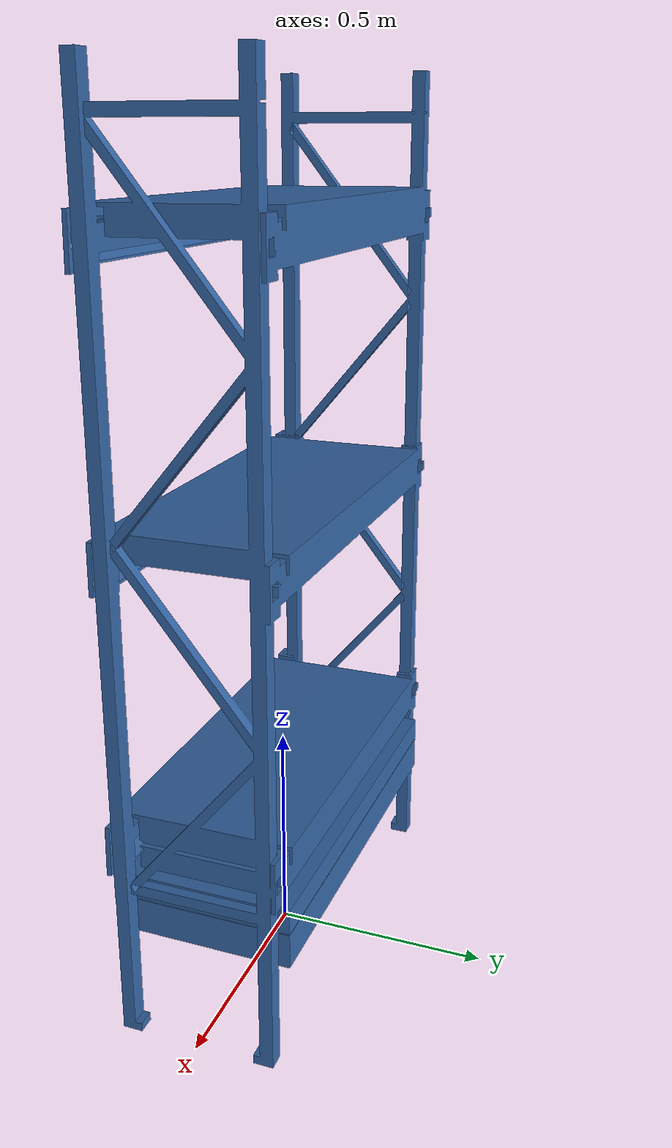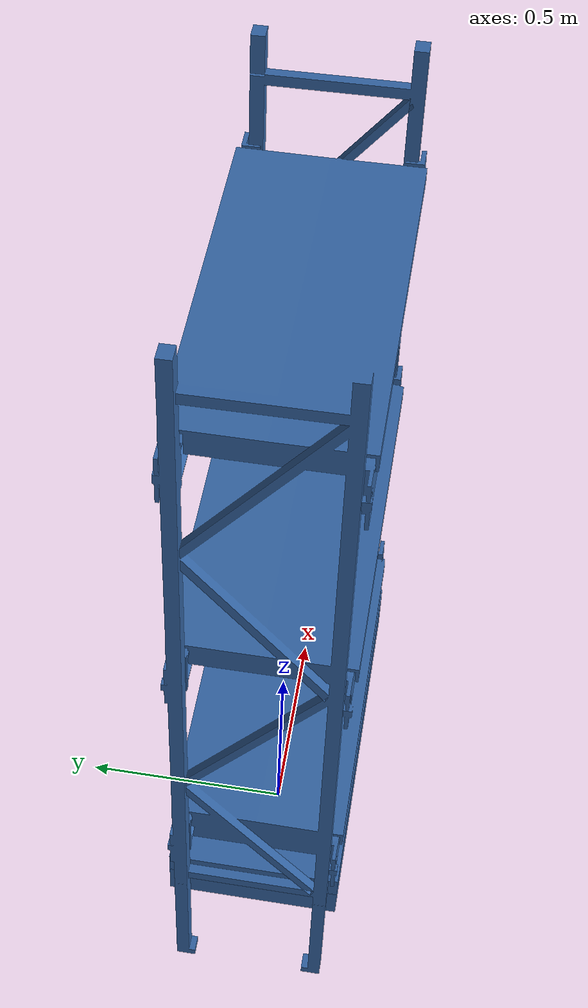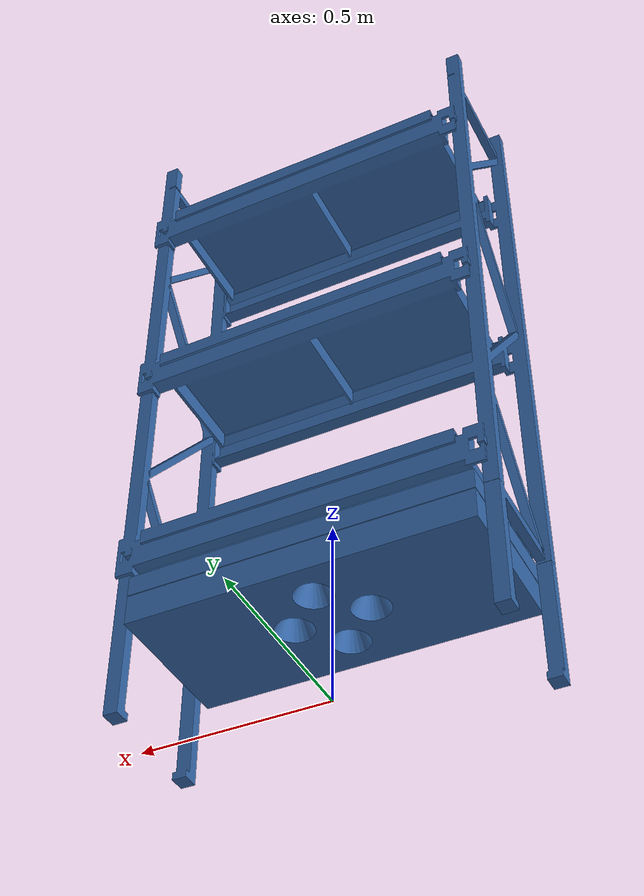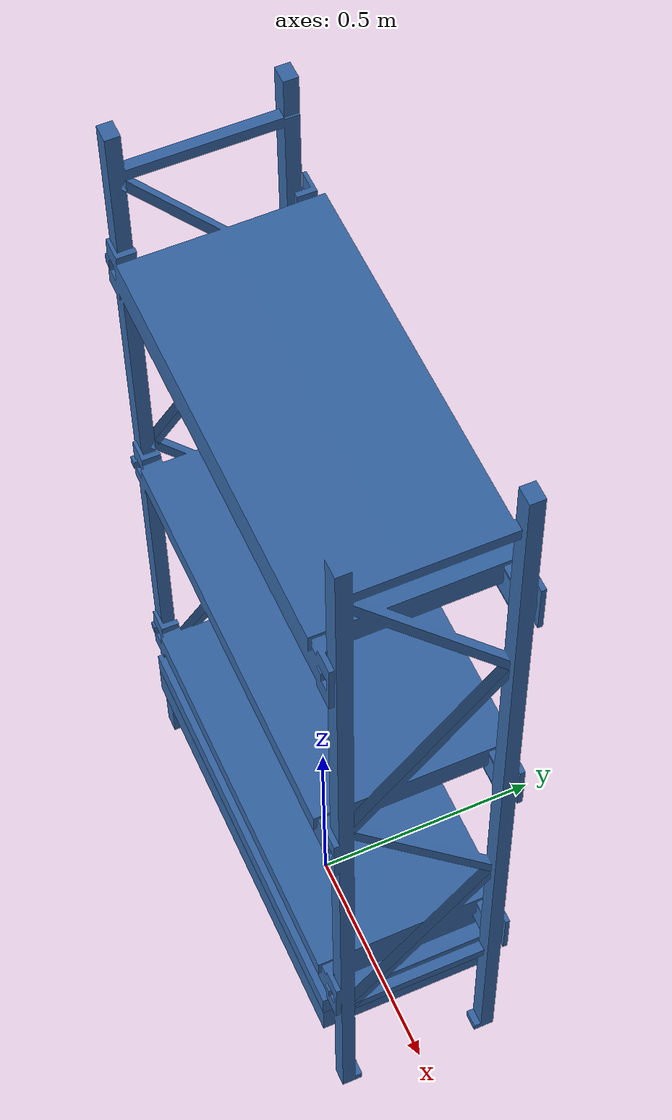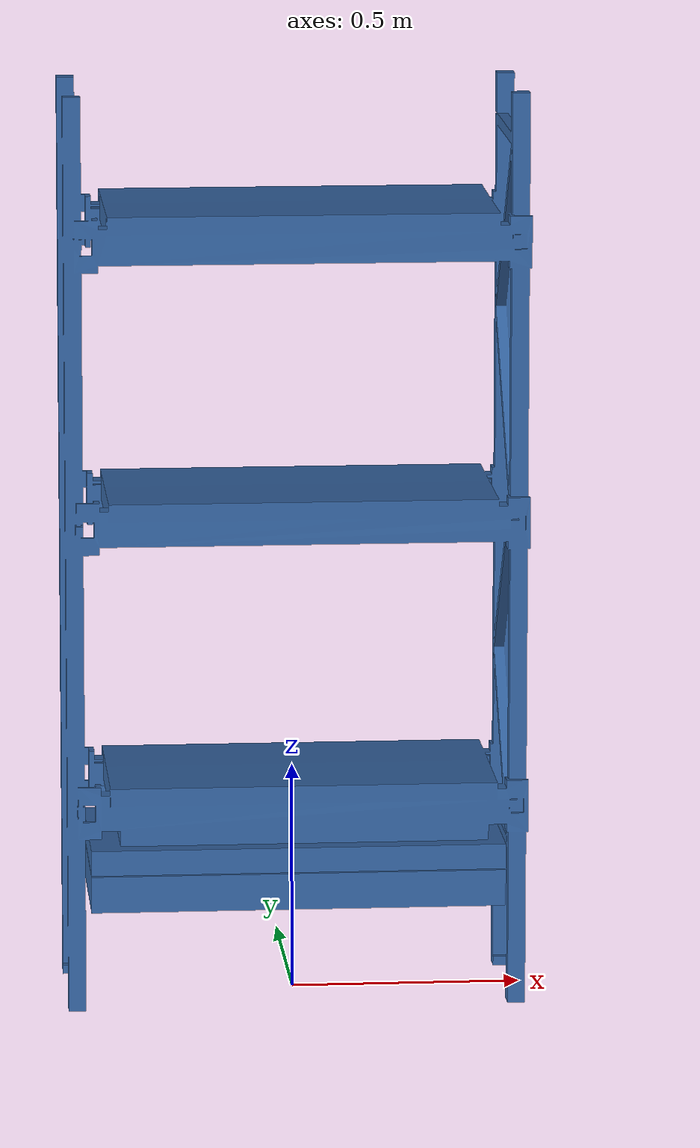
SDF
<?xml version='1.0'?>
<sdf version='1.7'>
  <model name='shelf'>
    <link name='shelf::link_0'>
      <inertial>
        <mass>0.01</mass>
        <inertia>
          <ixx>7.71e-05</ixx>
          <ixy>0</ixy>
          <ixz>0</ixz>
          <iyy>7.71e-05</iyy>
          <iyz>0</iyz>
          <izz>4.2e-06</izz>
        </inertia>
        <pose>0 0 0 0 -0 0</pose>
      </inertial>
      <pose>0 0 0 0 -0 0</pose>
      <gravity>1</gravity>
      <self_collide>0</self_collide>
      <kinematic>0</kinematic>
      <enable_wind>0</enable_wind>
      <visual name='visual'>
        <pose>0 0 0 0 -0 0</pose>
        <geometry>
          <mesh>
            <uri>model://shelf/meshes/shelf.dae</uri>
            <scale>1 1 1</scale>
          </mesh>
        </geometry>
        <transparency>0</transparency>
        <cast_shadows>1</cast_shadows>
        <material>
          <shader type='pixel'>
            <normal_map>__default__</normal_map>
          </shader>
          <script>
            <name>ModelPreview_6::link_0::visual_MATERIAL_</name>
            <uri>__default__</uri>
          </script>
          <ambient>0.204 0.396 0.643 1</ambient>
          <diffuse>0.204 0.396 0.643 1</diffuse>
          <specular>0 0 0 1</specular>
          <emissive>0 0 0 1</emissive>
        </material>
      </visual>
      <visual name='holes_visual'>
        <pose>0 0 0.225 0 -0 0</pose>
        <geometry>
          <mesh>
            <uri>model://shelf/meshes/holes.dae</uri>
            <scale>1 1 1</scale>
          </mesh>
        </geometry>
        <transparency>0</transparency>
        <cast_shadows>1</cast_shadows>
        <material>
          <shader type='pixel'>
            <normal_map>__default__</normal_map>
          </shader>
          <script>
            <name>ModelPreview_6::link_0::visual_MATERIAL_</name>
            <uri>__default__</uri>
          </script>
          <ambient>0.204 0.396 0.643 1</ambient>
          <diffuse>0.204 0.396 0.643 1</diffuse>
          <specular>0 0 0 1</specular>
          <emissive>0 0 0 1</emissive>
        </material>
      </visual>
      <visual name='ModelPreview_3::link_0::visual_1'>
        <pose>0 0 0.335 0 -0 0</pose>
        <geometry>
          <box>
            <size>0.9 0.4 0.055</size>
          </box>
        </geometry>
        <transparency>0</transparency>
        <cast_shadows>1</cast_shadows>
        <material>
          <shader type='pixel'>
            <normal_map>__default__</normal_map>
          </shader>
          <script>
            <name>ModelPreview_3::link_0::visual_1_MATERIAL_ModelPreview_6::link_0::visual_MATERIAL_</name>
            <uri>__default__</uri>
          </script>
          <ambient>0.204 0.396 0.643 1</ambient>
          <diffuse>0.204 0.396 0.643 1</diffuse>
          <specular>0 0 0 1</specular>
          <emissive>0 0 0 1</emissive>
        </material>
      </visual>
      <collision name='holes_collision'>
        <laser_retro>0</laser_retro>
        <max_contacts>10</max_contacts>
        <pose>0 0 0.225 0 -0 0</pose>
        <geometry>
          <mesh>
            <uri>/home/ssafy/S08P31A409/ssapang_ws/src/ssapang_map/models/shelf/meshes/holes.dae</uri>
            <scale>1 1 1</scale>
          </mesh>
        </geometry>
        <surface>
          <friction>
            <ode>
              <mu>1</mu>
              <mu2>1</mu2>
              <fdir1>0 0 0</fdir1>
              <slip1>0</slip1>
              <slip2>0</slip2>
            </ode>
            <torsional>
              <coefficient>1</coefficient>
              <patch_radius>1</patch_radius>
              <surface_radius>1</surface_radius>
              <use_patch_radius>1</use_patch_radius>
              <ode>
                <slip>0</slip>
              </ode>
            </torsional>
          </friction>
          <bounce>
            <restitution_coefficient>1</restitution_coefficient>
            <threshold>1e+06</threshold>
          </bounce>
          <contact>
            <collide_without_contact>0</collide_without_contact>
            <collide_without_contact_bitmask>1</collide_without_contact_bitmask>
            <collide_bitmask>1</collide_bitmask>
            <ode>
              <soft_cfm>0</soft_cfm>
              <soft_erp>0.2</soft_erp>
              <kp>1e+13</kp>
              <kd>1</kd>
              <max_vel>0.01</max_vel>
              <min_depth>0</min_depth>
            </ode>
            <bullet>
              <split_impulse>1</split_impulse>
              <split_impulse_penetration_threshold>-0.01</split_impulse_penetration_threshold>
              <soft_cfm>0</soft_cfm>
              <soft_erp>0.2</soft_erp>
              <kp>1e+13</kp>
              <kd>1</kd>
            </bullet>
          </contact>
        </surface>
      </collision>
      <collision name='slide_2'>
        <laser_retro>0</laser_retro>
        <max_contacts>10</max_contacts>
        <pose>0 0 1.13 0.05 -0 0</pose>
        <geometry>
          <box>
            <size>0.32 0.35 0.005</size>
          </box>
        </geometry>
        <surface>
          <friction>
            <ode>
              <mu>1</mu>
              <mu2>1</mu2>
              <fdir1>0 0 0</fdir1>
              <slip1>0</slip1>
              <slip2>0</slip2>
            </ode>
            <torsional>
              <coefficient>1</coefficient>
              <patch_radius>0</patch_radius>
              <surface_radius>0</surface_radius>
              <use_patch_radius>1</use_patch_radius>
              <ode>
                <slip>0</slip>
              </ode>
            </torsional>
          </friction>
          <bounce>
            <restitution_coefficient>0</restitution_coefficient>
            <threshold>1e+06</threshold>
          </bounce>
          <contact>
            <collide_without_contact>0</collide_without_contact>
            <collide_without_contact_bitmask>1</collide_without_contact_bitmask>
            <collide_bitmask>1</collide_bitmask>
            <ode>
              <soft_cfm>0</soft_cfm>
              <soft_erp>0.2</soft_erp>
              <kp>1e+13</kp>
              <kd>1</kd>
              <max_vel>0.01</max_vel>
              <min_depth>0</min_depth>
            </ode>
            <bullet>
              <split_impulse>1</split_impulse>
              <split_impulse_penetration_threshold>-0.01</split_impulse_penetration_threshold>
              <soft_cfm>0</soft_cfm>
              <soft_erp>0.2</soft_erp>
              <kp>1e+13</kp>
              <kd>1</kd>
            </bullet>
          </contact>
        </surface>
      </collision>
      <collision name='back_2'>
        <laser_retro>0</laser_retro>
        <max_contacts>10</max_contacts>
        <pose>0 -0.175 1.14 0 -0 0</pose>
        <geometry>
          <box>
            <size>0.32 0.01 0.01</size>
          </box>
        </geometry>
        <surface>
          <friction>
            <ode>
              <mu>1</mu>
              <mu2>1</mu2>
              <fdir1>0 0 0</fdir1>
              <slip1>0</slip1>
              <slip2>0</slip2>
            </ode>
            <torsional>
              <coefficient>1</coefficient>
              <patch_radius>0</patch_radius>
              <surface_radius>0</surface_radius>
              <use_patch_radius>1</use_patch_radius>
              <ode>
                <slip>0</slip>
              </ode>
            </torsional>
          </friction>
          <bounce>
            <restitution_coefficient>0</restitution_coefficient>
            <threshold>1e+06</threshold>
          </bounce>
          <contact>
            <collide_without_contact>0</collide_without_contact>
            <collide_without_contact_bitmask>1</collide_without_contact_bitmask>
            <collide_bitmask>1</collide_bitmask>
            <ode>
              <soft_cfm>0</soft_cfm>
              <soft_erp>0.2</soft_erp>
              <kp>1e+13</kp>
              <kd>1</kd>
              <max_vel>0.01</max_vel>
              <min_depth>0</min_depth>
            </ode>
            <bullet>
              <split_impulse>1</split_impulse>
              <split_impulse_penetration_threshold>-0.01</split_impulse_penetration_threshold>
              <soft_cfm>0</soft_cfm>
              <soft_erp>0.2</soft_erp>
              <kp>1e+13</kp>
              <kd>1</kd>
            </bullet>
          </contact>
        </surface>
      </collision>
      <collision name='sideSlide_2_2'>
        <laser_retro>0</laser_retro>
        <max_contacts>10</max_contacts>
        <pose>-0.16 0 1.13 0 -0 0</pose>
        <geometry>
          <box>
            <size>0.01 0.4 0.05</size>
          </box>
        </geometry>
        <surface>
          <friction>
            <ode>
              <mu>1</mu>
              <mu2>1</mu2>
              <fdir1>0 0 0</fdir1>
              <slip1>0</slip1>
              <slip2>0</slip2>
            </ode>
            <torsional>
              <coefficient>1</coefficient>
              <patch_radius>0</patch_radius>
              <surface_radius>0</surface_radius>
              <use_patch_radius>1</use_patch_radius>
              <ode>
                <slip>0</slip>
              </ode>
            </torsional>
          </friction>
          <bounce>
            <restitution_coefficient>0</restitution_coefficient>
            <threshold>1e+06</threshold>
          </bounce>
          <contact>
            <collide_without_contact>0</collide_without_contact>
            <collide_without_contact_bitmask>1</collide_without_contact_bitmask>
            <collide_bitmask>1</collide_bitmask>
            <ode>
              <soft_cfm>0</soft_cfm>
              <soft_erp>0.2</soft_erp>
              <kp>1e+13</kp>
              <kd>1</kd>
              <max_vel>0.01</max_vel>
              <min_depth>0</min_depth>
            </ode>
            <bullet>
              <split_impulse>1</split_impulse>
              <split_impulse_penetration_threshold>-0.01</split_impulse_penetration_threshold>
              <soft_cfm>0</soft_cfm>
              <soft_erp>0.2</soft_erp>
              <kp>1e+13</kp>
              <kd>1</kd>
            </bullet>
          </contact>
        </surface>
      </collision>
      <collision name='sideSlide_2_1'>
        <laser_retro>0</laser_retro>
        <max_contacts>10</max_contacts>
        <pose>0.16 0 1.13 0 -0 0</pose>
        <geometry>
          <box>
            <size>0.01 0.4 0.05</size>
          </box>
        </geometry>
        <surface>
          <friction>
            <ode>
              <mu>1</mu>
              <mu2>1</mu2>
              <fdir1>0 0 0</fdir1>
              <slip1>0</slip1>
              <slip2>0</slip2>
            </ode>
            <torsional>
              <coefficient>1</coefficient>
              <patch_radius>0</patch_radius>
              <surface_radius>0</surface_radius>
              <use_patch_radius>1</use_patch_radius>
              <ode>
                <slip>0</slip>
              </ode>
            </torsional>
          </friction>
          <bounce>
            <restitution_coefficient>0</restitution_coefficient>
            <threshold>1e+06</threshold>
          </bounce>
          <contact>
            <collide_without_contact>0</collide_without_contact>
            <collide_without_contact_bitmask>1</collide_without_contact_bitmask>
            <collide_bitmask>1</collide_bitmask>
            <ode>
              <soft_cfm>0</soft_cfm>
              <soft_erp>0.2</soft_erp>
              <kp>1e+13</kp>
              <kd>1</kd>
              <max_vel>0.01</max_vel>
              <min_depth>0</min_depth>
            </ode>
            <bullet>
              <split_impulse>1</split_impulse>
              <split_impulse_penetration_threshold>-0.01</split_impulse_penetration_threshold>
              <soft_cfm>0</soft_cfm>
              <soft_erp>0.2</soft_erp>
              <kp>1e+13</kp>
              <kd>1</kd>
            </bullet>
          </contact>
        </surface>
      </collision>
      <collision name='slide_1'>
        <laser_retro>0</laser_retro>
        <max_contacts>10</max_contacts>
        <pose>0 0 0.505 0.05 -0 0</pose>
        <geometry>
          <box>
            <size>0.32 0.35 0.005</size>
          </box>
        </geometry>
        <surface>
          <friction>
            <ode>
              <mu>1</mu>
              <mu2>1</mu2>
              <fdir1>0 0 0</fdir1>
              <slip1>0</slip1>
              <slip2>0</slip2>
            </ode>
            <torsional>
              <coefficient>1</coefficient>
              <patch_radius>0</patch_radius>
              <surface_radius>0</surface_radius>
              <use_patch_radius>1</use_patch_radius>
              <ode>
                <slip>0</slip>
              </ode>
            </torsional>
          </friction>
          <bounce>
            <restitution_coefficient>0</restitution_coefficient>
            <threshold>1e+06</threshold>
          </bounce>
          <contact>
            <collide_without_contact>0</collide_without_contact>
            <collide_without_contact_bitmask>1</collide_without_contact_bitmask>
            <collide_bitmask>1</collide_bitmask>
            <ode>
              <soft_cfm>0</soft_cfm>
              <soft_erp>0.2</soft_erp>
              <kp>1e+13</kp>
              <kd>1</kd>
              <max_vel>0.01</max_vel>
              <min_depth>0</min_depth>
            </ode>
            <bullet>
              <split_impulse>1</split_impulse>
              <split_impulse_penetration_threshold>-0.01</split_impulse_penetration_threshold>
              <soft_cfm>0</soft_cfm>
              <soft_erp>0.2</soft_erp>
              <kp>1e+13</kp>
              <kd>1</kd>
            </bullet>
          </contact>
        </surface>
      </collision>
      <collision name='sideSlide_1_1'>
        <laser_retro>0</laser_retro>
        <max_contacts>10</max_contacts>
        <pose>0.16 0 0.51 0 -0 0</pose>
        <geometry>
          <box>
            <size>0.01 0.4 0.05</size>
          </box>
        </geometry>
        <surface>
          <friction>
            <ode>
              <mu>1</mu>
              <mu2>1</mu2>
              <fdir1>0 0 0</fdir1>
              <slip1>0</slip1>
              <slip2>0</slip2>
            </ode>
            <torsional>
              <coefficient>1</coefficient>
              <patch_radius>0</patch_radius>
              <surface_radius>0</surface_radius>
              <use_patch_radius>1</use_patch_radius>
              <ode>
                <slip>0</slip>
              </ode>
            </torsional>
          </friction>
          <bounce>
            <restitution_coefficient>0</restitution_coefficient>
            <threshold>1e+06</threshold>
          </bounce>
          <contact>
            <collide_without_contact>0</collide_without_contact>
            <collide_without_contact_bitmask>1</collide_without_contact_bitmask>
            <collide_bitmask>1</collide_bitmask>
            <ode>
              <soft_cfm>0</soft_cfm>
              <soft_erp>0.2</soft_erp>
              <kp>1e+13</kp>
              <kd>1</kd>
              <max_vel>0.01</max_vel>
              <min_depth>0</min_depth>
            </ode>
            <bullet>
              <split_impulse>1</split_impulse>
              <split_impulse_penetration_threshold>-0.01</split_impulse_penetration_threshold>
              <soft_cfm>0</soft_cfm>
              <soft_erp>0.2</soft_erp>
              <kp>1e+13</kp>
              <kd>1</kd>
            </bullet>
          </contact>
        </surface>
      </collision>
      <collision name='back_1'>
        <laser_retro>0</laser_retro>
        <max_contacts>10</max_contacts>
        <pose>0 -0.175 0.51 0 -0 0</pose>
        <geometry>
          <box>
            <size>0.32 0.01 0.01</size>
          </box>
        </geometry>
        <surface>
          <friction>
            <ode>
              <mu>1</mu>
              <mu2>1</mu2>
              <fdir1>0 0 0</fdir1>
              <slip1>0</slip1>
              <slip2>0</slip2>
            </ode>
            <torsional>
              <coefficient>1</coefficient>
              <patch_radius>0</patch_radius>
              <surface_radius>0</surface_radius>
              <use_patch_radius>1</use_patch_radius>
              <ode>
                <slip>0</slip>
              </ode>
            </torsional>
          </friction>
          <bounce>
            <restitution_coefficient>0</restitution_coefficient>
            <threshold>1e+06</threshold>
          </bounce>
          <contact>
            <collide_without_contact>0</collide_without_contact>
            <collide_without_contact_bitmask>1</collide_without_contact_bitmask>
            <collide_bitmask>1</collide_bitmask>
            <ode>
              <soft_cfm>0</soft_cfm>
              <soft_erp>0.2</soft_erp>
              <kp>1e+13</kp>
              <kd>1</kd>
              <max_vel>0.01</max_vel>
              <min_depth>0</min_depth>
            </ode>
            <bullet>
              <split_impulse>1</split_impulse>
              <split_impulse_penetration_threshold>-0.01</split_impulse_penetration_threshold>
              <soft_cfm>0</soft_cfm>
              <soft_erp>0.2</soft_erp>
              <kp>1e+13</kp>
              <kd>1</kd>
            </bullet>
          </contact>
        </surface>
      </collision>
      <collision name='sideSlide_1_2'>
        <laser_retro>0</laser_retro>
        <max_contacts>10</max_contacts>
        <pose>-0.16 0 0.51 0 -0 0</pose>
        <geometry>
          <box>
            <size>0.01 0.4 0.05</size>
          </box>
        </geometry>
        <surface>
          <friction>
            <ode>
              <mu>1</mu>
              <mu2>1</mu2>
              <fdir1>0 0 0</fdir1>
              <slip1>0</slip1>
              <slip2>0</slip2>
            </ode>
            <torsional>
              <coefficient>1</coefficient>
              <patch_radius>0</patch_radius>
              <surface_radius>0</surface_radius>
              <use_patch_radius>1</use_patch_radius>
              <ode>
                <slip>0</slip>
              </ode>
            </torsional>
          </friction>
          <bounce>
            <restitution_coefficient>0</restitution_coefficient>
            <threshold>1e+06</threshold>
          </bounce>
          <contact>
            <collide_without_contact>0</collide_without_contact>
            <collide_without_contact_bitmask>1</collide_without_contact_bitmask>
            <collide_bitmask>1</collide_bitmask>
            <ode>
              <soft_cfm>0</soft_cfm>
              <soft_erp>0.2</soft_erp>
              <kp>1e+13</kp>
              <kd>1</kd>
              <max_vel>0.01</max_vel>
              <min_depth>0</min_depth>
            </ode>
            <bullet>
              <split_impulse>1</split_impulse>
              <split_impulse_penetration_threshold>-0.01</split_impulse_penetration_threshold>
              <soft_cfm>0</soft_cfm>
              <soft_erp>0.2</soft_erp>
              <kp>1e+13</kp>
              <kd>1</kd>
            </bullet>
          </contact>
        </surface>
      </collision>
      <collision name='column_2'>
        <laser_retro>0</laser_retro>
        <max_contacts>10</max_contacts>
        <pose>-0.425 -0.175 0.9 0 -0 0</pose>
        <geometry>
          <box>
            <size>0.05 0.05 1.8</size>
          </box>
        </geometry>
        <surface>
          <friction>
            <ode>
              <mu>1</mu>
              <mu2>1</mu2>
              <fdir1>0 0 0</fdir1>
              <slip1>0</slip1>
              <slip2>0</slip2>
            </ode>
            <torsional>
              <coefficient>1</coefficient>
              <patch_radius>0</patch_radius>
              <surface_radius>0</surface_radius>
              <use_patch_radius>1</use_patch_radius>
              <ode>
                <slip>0</slip>
              </ode>
            </torsional>
          </friction>
          <bounce>
            <restitution_coefficient>0</restitution_coefficient>
            <threshold>1e+06</threshold>
          </bounce>
          <contact>
            <collide_without_contact>0</collide_without_contact>
            <collide_without_contact_bitmask>1</collide_without_contact_bitmask>
            <collide_bitmask>1</collide_bitmask>
            <ode>
              <soft_cfm>0</soft_cfm>
              <soft_erp>0.2</soft_erp>
              <kp>1e+13</kp>
              <kd>1</kd>
              <max_vel>0.01</max_vel>
              <min_depth>0</min_depth>
            </ode>
            <bullet>
              <split_impulse>1</split_impulse>
              <split_impulse_penetration_threshold>-0.01</split_impulse_penetration_threshold>
              <soft_cfm>0</soft_cfm>
              <soft_erp>0.2</soft_erp>
              <kp>1e+13</kp>
              <kd>1</kd>
            </bullet>
          </contact>
        </surface>
      </collision>
      <collision name='column_1'>
        <laser_retro>0</laser_retro>
        <max_contacts>10</max_contacts>
        <pose>-0.425 0.175 0.9 0 -0 0</pose>
        <geometry>
          <box>
            <size>0.05 0.05 1.8</size>
          </box>
        </geometry>
        <surface>
          <friction>
            <ode>
              <mu>1</mu>
              <mu2>1</mu2>
              <fdir1>0 0 0</fdir1>
              <slip1>0</slip1>
              <slip2>0</slip2>
            </ode>
            <torsional>
              <coefficient>1</coefficient>
              <patch_radius>0</patch_radius>
              <surface_radius>0</surface_radius>
              <use_patch_radius>1</use_patch_radius>
              <ode>
                <slip>0</slip>
              </ode>
            </torsional>
          </friction>
          <bounce>
            <restitution_coefficient>0</restitution_coefficient>
            <threshold>1e+06</threshold>
          </bounce>
          <contact>
            <collide_without_contact>0</collide_without_contact>
            <collide_without_contact_bitmask>1</collide_without_contact_bitmask>
            <collide_bitmask>1</collide_bitmask>
            <ode>
              <soft_cfm>0</soft_cfm>
              <soft_erp>0.2</soft_erp>
              <kp>1e+13</kp>
              <kd>1</kd>
              <max_vel>0.01</max_vel>
              <min_depth>0</min_depth>
            </ode>
            <bullet>
              <split_impulse>1</split_impulse>
              <split_impulse_penetration_threshold>-0.01</split_impulse_penetration_threshold>
              <soft_cfm>0</soft_cfm>
              <soft_erp>0.2</soft_erp>
              <kp>1e+13</kp>
              <kd>1</kd>
            </bullet>
          </contact>
        </surface>
      </collision>
      <collision name='column_3'>
        <laser_retro>0</laser_retro>
        <max_contacts>10</max_contacts>
        <pose>0.425 0.175 0.9 0 -0 0</pose>
        <geometry>
          <box>
            <size>0.05 0.05 1.8</size>
          </box>
        </geometry>
        <surface>
          <friction>
            <ode>
              <mu>1</mu>
              <mu2>1</mu2>
              <fdir1>0 0 0</fdir1>
              <slip1>0</slip1>
              <slip2>0</slip2>
            </ode>
            <torsional>
              <coefficient>1</coefficient>
              <patch_radius>0</patch_radius>
              <surface_radius>0</surface_radius>
              <use_patch_radius>1</use_patch_radius>
              <ode>
                <slip>0</slip>
              </ode>
            </torsional>
          </friction>
          <bounce>
            <restitution_coefficient>0</restitution_coefficient>
            <threshold>1e+06</threshold>
          </bounce>
          <contact>
            <collide_without_contact>0</collide_without_contact>
            <collide_without_contact_bitmask>1</collide_without_contact_bitmask>
            <collide_bitmask>1</collide_bitmask>
            <ode>
              <soft_cfm>0</soft_cfm>
              <soft_erp>0.2</soft_erp>
              <kp>1e+13</kp>
              <kd>1</kd>
              <max_vel>0.01</max_vel>
              <min_depth>0</min_depth>
            </ode>
            <bullet>
              <split_impulse>1</split_impulse>
              <split_impulse_penetration_threshold>-0.01</split_impulse_penetration_threshold>
              <soft_cfm>0</soft_cfm>
              <soft_erp>0.2</soft_erp>
              <kp>1e+13</kp>
              <kd>1</kd>
            </bullet>
          </contact>
        </surface>
      </collision>
      <collision name='plate_3'>
        <laser_retro>0</laser_retro>
        <max_contacts>10</max_contacts>
        <pose>0 0 1.08 0 -0 0</pose>
        <geometry>
          <box>
            <size>0.9 0.4 0.1</size>
          </box>
        </geometry>
        <surface>
          <friction>
            <ode>
              <mu>1</mu>
              <mu2>1</mu2>
              <fdir1>0 0 0</fdir1>
              <slip1>0</slip1>
              <slip2>0</slip2>
            </ode>
            <torsional>
              <coefficient>1</coefficient>
              <patch_radius>0</patch_radius>
              <surface_radius>0</surface_radius>
              <use_patch_radius>1</use_patch_radius>
              <ode>
                <slip>0</slip>
              </ode>
            </torsional>
          </friction>
          <bounce>
            <restitution_coefficient>0</restitution_coefficient>
            <threshold>1e+06</threshold>
          </bounce>
          <contact>
            <collide_without_contact>0</collide_without_contact>
            <collide_without_contact_bitmask>1</collide_without_contact_bitmask>
            <collide_bitmask>1</collide_bitmask>
            <ode>
              <soft_cfm>0</soft_cfm>
              <soft_erp>0.2</soft_erp>
              <kp>1e+13</kp>
              <kd>1</kd>
              <max_vel>0.01</max_vel>
              <min_depth>0</min_depth>
            </ode>
            <bullet>
              <split_impulse>1</split_impulse>
              <split_impulse_penetration_threshold>-0.01</split_impulse_penetration_threshold>
              <soft_cfm>0</soft_cfm>
              <soft_erp>0.2</soft_erp>
              <kp>1e+13</kp>
              <kd>1</kd>
            </bullet>
          </contact>
        </surface>
      </collision>
      <collision name='column_4'>
        <laser_retro>0</laser_retro>
        <max_contacts>10</max_contacts>
        <pose>0.425 -0.175 0.9 0 -0 0</pose>
        <geometry>
          <box>
            <size>0.05 0.05 1.8</size>
          </box>
        </geometry>
        <surface>
          <friction>
            <ode>
              <mu>1</mu>
              <mu2>1</mu2>
              <fdir1>0 0 0</fdir1>
              <slip1>0</slip1>
              <slip2>0</slip2>
            </ode>
            <torsional>
              <coefficient>1</coefficient>
              <patch_radius>0</patch_radius>
              <surface_radius>0</surface_radius>
              <use_patch_radius>1</use_patch_radius>
              <ode>
                <slip>0</slip>
              </ode>
            </torsional>
          </friction>
          <bounce>
            <restitution_coefficient>0</restitution_coefficient>
            <threshold>1e+06</threshold>
          </bounce>
          <contact>
            <collide_without_contact>0</collide_without_contact>
            <collide_without_contact_bitmask>1</collide_without_contact_bitmask>
            <collide_bitmask>1</collide_bitmask>
            <ode>
              <soft_cfm>0</soft_cfm>
              <soft_erp>0.2</soft_erp>
              <kp>1e+13</kp>
              <kd>1</kd>
              <max_vel>0.01</max_vel>
              <min_depth>0</min_depth>
            </ode>
            <bullet>
              <split_impulse>1</split_impulse>
              <split_impulse_penetration_threshold>-0.01</split_impulse_penetration_threshold>
              <soft_cfm>0</soft_cfm>
              <soft_erp>0.2</soft_erp>
              <kp>1e+13</kp>
              <kd>1</kd>
            </bullet>
          </contact>
        </surface>
      </collision>
      <collision name='plate_2'>
        <laser_retro>0</laser_retro>
        <max_contacts>10</max_contacts>
        <pose>0 0 1.68 0 -0 0</pose>
        <geometry>
          <box>
            <size>0.9 0.4 0.1</size>
          </box>
        </geometry>
        <surface>
          <friction>
            <ode>
              <mu>1</mu>
              <mu2>1</mu2>
              <fdir1>0 0 0</fdir1>
              <slip1>0</slip1>
              <slip2>0</slip2>
            </ode>
            <torsional>
              <coefficient>1</coefficient>
              <patch_radius>0</patch_radius>
              <surface_radius>0</surface_radius>
              <use_patch_radius>1</use_patch_radius>
              <ode>
                <slip>0</slip>
              </ode>
            </torsional>
          </friction>
          <bounce>
            <restitution_coefficient>0</restitution_coefficient>
            <threshold>1e+06</threshold>
          </bounce>
          <contact>
            <collide_without_contact>0</collide_without_contact>
            <collide_without_contact_bitmask>1</collide_without_contact_bitmask>
            <collide_bitmask>1</collide_bitmask>
            <ode>
              <soft_cfm>0</soft_cfm>
              <soft_erp>0.2</soft_erp>
              <kp>1e+13</kp>
              <kd>1</kd>
              <max_vel>0.01</max_vel>
              <min_depth>0</min_depth>
            </ode>
            <bullet>
              <split_impulse>1</split_impulse>
              <split_impulse_penetration_threshold>-0.01</split_impulse_penetration_threshold>
              <soft_cfm>0</soft_cfm>
              <soft_erp>0.2</soft_erp>
              <kp>1e+13</kp>
              <kd>1</kd>
            </bullet>
          </contact>
        </surface>
      </collision>
      <collision name='plate_1'>
        <laser_retro>0</laser_retro>
        <max_contacts>10</max_contacts>
        <pose>0 0 0.43 0 -0 0</pose>
        <geometry>
          <box>
            <size>0.9 0.4 0.15</size>
          </box>
        </geometry>
        <surface>
          <friction>
            <ode>
              <mu>100</mu>
              <mu2>100</mu2>
              <fdir1>0 0 0</fdir1>
              <slip1>0</slip1>
              <slip2>0</slip2>
            </ode>
            <torsional>
              <coefficient>1</coefficient>
              <patch_radius>0</patch_radius>
              <surface_radius>0</surface_radius>
              <use_patch_radius>1</use_patch_radius>
              <ode>
                <slip>0</slip>
              </ode>
            </torsional>
          </friction>
          <bounce>
            <restitution_coefficient>0</restitution_coefficient>
            <threshold>1e+06</threshold>
          </bounce>
          <contact>
            <collide_without_contact>0</collide_without_contact>
            <collide_without_contact_bitmask>1</collide_without_contact_bitmask>
            <collide_bitmask>1</collide_bitmask>
            <ode>
              <soft_cfm>0</soft_cfm>
              <soft_erp>0.2</soft_erp>
              <kp>1e+13</kp>
              <kd>1</kd>
              <max_vel>0.01</max_vel>
              <min_depth>0</min_depth>
            </ode>
            <bullet>
              <split_impulse>1</split_impulse>
              <split_impulse_penetration_threshold>-0.01</split_impulse_penetration_threshold>
              <soft_cfm>0</soft_cfm>
              <soft_erp>0.2</soft_erp>
              <kp>1e+13</kp>
              <kd>1</kd>
            </bullet>
          </contact>
        </surface>
      </collision>
    </link>
    <static>0</static>
    <allow_auto_disable>1</allow_auto_disable>
  </model>
</sdf>
